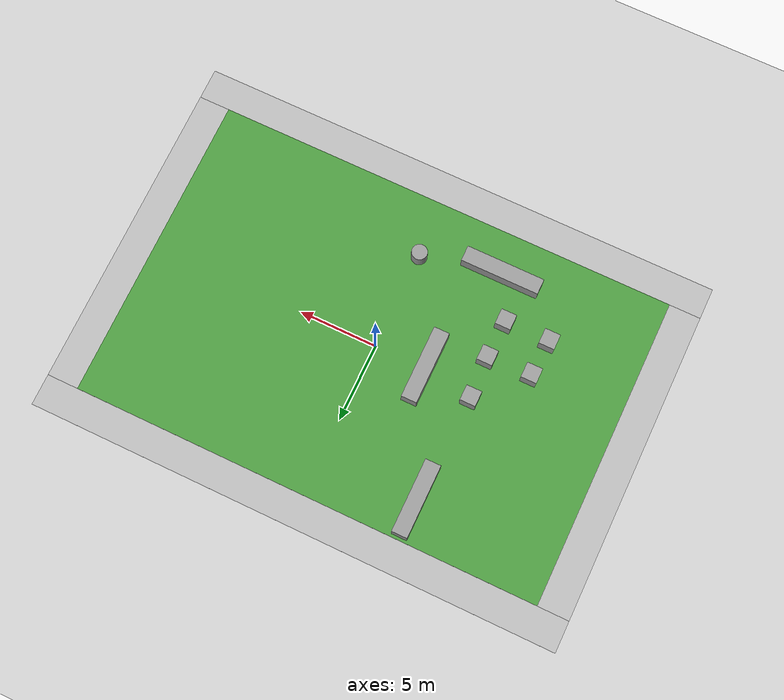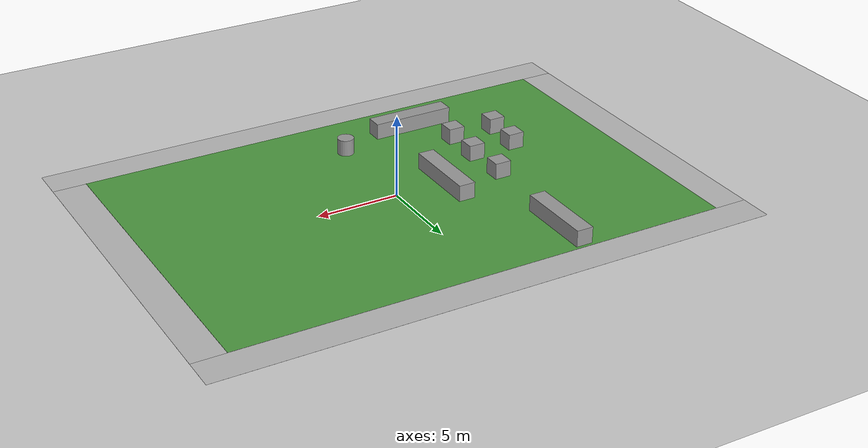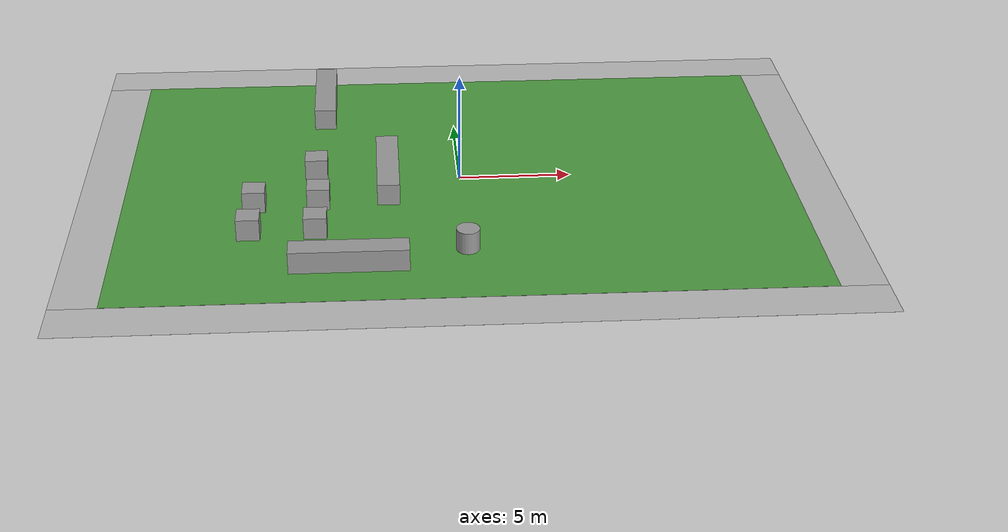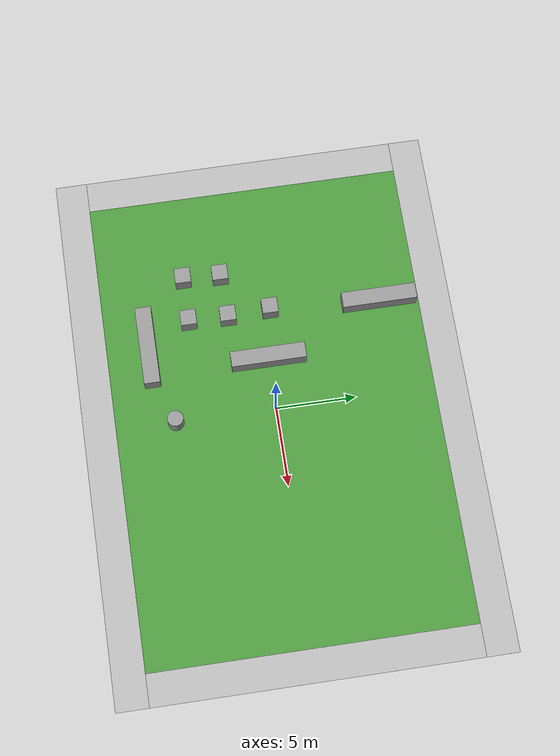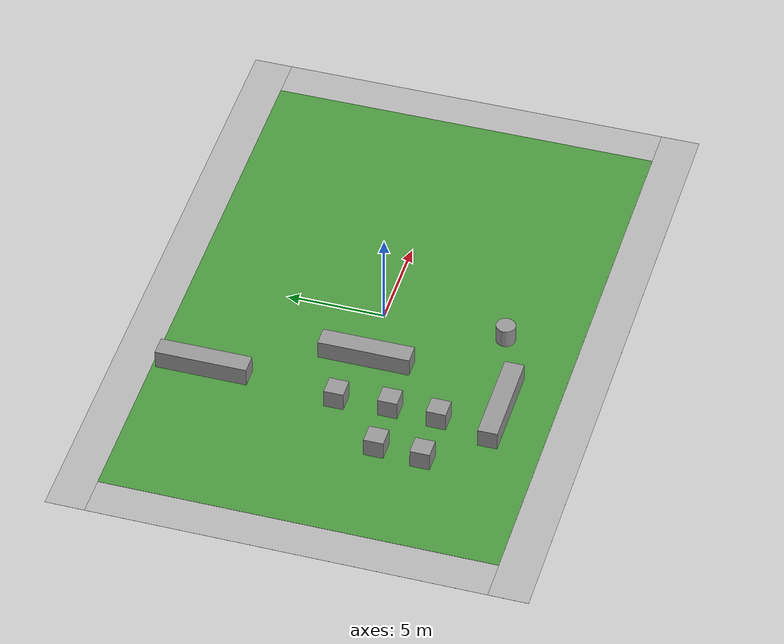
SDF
<sdf version="1.6">
 <world name="default">
  <model name="ground_plane">
   <static>1</static>
   <link name="link">
    <collision name="collision">
     <geometry><plane><normal>0 0 1</normal><size>100 100</size></plane></geometry>
     <surface>
      <contact><collide_bitmask>65535</collide_bitmask></contact>
      <friction><ode><mu>100</mu><mu2>50</mu2></ode></friction>
     </surface>
    </collision>
    <visual name="visual">
     <cast_shadows>0</cast_shadows>
     <geometry><plane><normal>0 0 1</normal><size>100 100</size></plane></geometry>
     <material>
      <script><uri>file://media/materials/scripts/gazebo.material</uri><name>Gazebo/Grey</name></script>
     </material>
    </visual>
   </link>
  </model>
  <model name="robocup_3d_field">
   <static>1</static>
   <link name="field">
    <pose>0 0 0.01 0 -0 0</pose>
    <collision name="collision">
     <geometry><plane><normal>0 0 1</normal><size>30 20</size></plane></geometry>
     <surface><friction><ode><mu>100</mu><mu2>50</mu2></ode></friction></surface>
    </collision>
    <visual name="base1">
     <pose>0 11 0.001 0 -0 0</pose>
     <cast_shadows>0</cast_shadows>
     <geometry><plane><normal>0 0 1</normal><size>34 2</size></plane></geometry>
     <material>
      <script>
       <uri>model://robocup_3Dsim_field/materials/scripts/</uri>
       <uri>model://robocup_3Dsim_field/materials/textures/</uri>
       <name>RoboCup/FieldBorder</name>
      </script>
     </material>
    </visual>
    <visual name="base2">
     <pose>0 -11 0.001 0 -0 0</pose>
     <cast_shadows>0</cast_shadows>
     <geometry><plane><normal>0 0 1</normal><size>34 2</size></plane></geometry>
     <material>
      <script>
       <uri>model://robocup_3Dsim_field/materials/scripts/</uri>
       <uri>model://robocup_3Dsim_field/materials/textures/</uri>
       <name>RoboCup/FieldBorder</name>
      </script>
     </material>
    </visual>
    <visual name="base3">
     <pose>16 0 0.001 0 -0 0</pose>
     <cast_shadows>0</cast_shadows>
     <geometry><plane><normal>0 0 1</normal><size>2 20</size></plane></geometry>
     <material>
      <script>
       <uri>model://robocup_3Dsim_field/materials/scripts/</uri>
       <uri>model://robocup_3Dsim_field/materials/textures/</uri>
       <name>RoboCup/FieldBorder</name>
      </script>
     </material>
    </visual>
    <visual name="base4">
     <pose>-16 0 0.001 0 -0 0</pose>
     <cast_shadows>0</cast_shadows>
     <geometry><plane><normal>0 0 1</normal><size>2 20</size></plane></geometry>
     <material>
      <script>
       <uri>model://robocup_3Dsim_field/materials/scripts/</uri>
       <uri>model://robocup_3Dsim_field/materials/textures/</uri>
       <name>RoboCup/FieldBorder</name>
      </script>
     </material>
    </visual>
    <visual name="carpet">
     <cast_shadows>0</cast_shadows>
     <geometry><plane><normal>0 0 1</normal><size>30 20</size></plane></geometry>
     <material>
      <script>
       <uri>model://robocup_3Dsim_field/materials/scripts/</uri>
       <uri>model://robocup_3Dsim_field/materials/textures/</uri>
       <name>RoboCup/Grass</name>
      </script>
     </material>
    </visual>
   </link>
  </model>
  <model name="unit_box_clone_7_clone">
   <static>1</static>
   <pose>-4.98381 -7.36602 0.507807 0 0.000871 1.7e-05</pose>
   <link name="link">
    <inertial>
     <mass>1</mass>
     <inertia>
      <ixx>0.166667</ixx>
      <ixy>0</ixy>
      <ixz>0</ixz>
      <iyy>0.166667</iyy>
      <iyz>0</iyz>
      <izz>0.166667</izz>
     </inertia>
    </inertial>
    <collision name="collision"><geometry><box><size>5.03596 1 1</size></box></geometry></collision>
    <visual name="visual">
     <geometry><box><size>5.03596 1 1</size></box></geometry>
     <material>
      <script><name>Gazebo/Grey</name><uri>file://media/materials/scripts/gazebo.material</uri></script>
     </material>
    </visual>
   </link>
  </model>
  <model name="unit_cylinder_1">
   <static>1</static>
   <pose>0.027885 -6.24796 0.509991 0 -0 0</pose>
   <link name="link">
    <inertial>
     <mass>1</mass>
     <inertia><ixx>0.145833</ixx><ixy>0</ixy><ixz>0</ixz><iyy>0.145833</iyy><iyz>0</iyz><izz>0.125</izz></inertia>
    </inertial>
    <collision name="collision">
     <geometry><cylinder><radius>0.5</radius><length>1</length></cylinder></geometry>
    </collision>
    <visual name="visual">
     <geometry><cylinder><radius>0.5</radius><length>1</length></cylinder></geometry>
     <material>
      <script><name>Gazebo/Grey</name><uri>file://media/materials/scripts/gazebo.material</uri></script>
     </material>
    </visual>
   </link>
  </model>
  <model name="unit_box_0">
   <static>1</static>
   <pose>-3.25338 -0.010603 0.509999 -0 -2e-06 -5.4e-05</pose>
   <link name="link">
    <inertial>
     <mass>1</mass>
     <inertia>
      <ixx>0.166667</ixx>
      <ixy>0</ixy>
      <ixz>0</ixz>
      <iyy>0.166667</iyy>
      <iyz>0</iyz>
      <izz>0.166667</izz>
     </inertia>
    </inertial>
    <collision name="collision"><geometry><box><size>1 4.69391 1</size></box></geometry></collision>
    <visual name="visual">
     <geometry><box><size>1 4.69391 1</size></box></geometry>
     <material>
      <script><name>Gazebo/Grey</name><uri>file://media/materials/scripts/gazebo.material</uri></script>
     </material>
    </visual>
   </link>
  </model>
  <model name="unit_box_0_clone">
   <static>1</static>
   <pose>-6.14157 7.46896 0.508413 0.000676 0 5e-06</pose>
   <link name="link">
    <inertial>
     <mass>1</mass>
     <inertia>
      <ixx>0.166667</ixx>
      <ixy>0</ixy>
      <ixz>0</ixz>
      <iyy>0.166667</iyy>
      <iyz>0</iyz>
      <izz>0.166667</izz>
     </inertia>
    </inertial>
    <collision name="collision"><geometry><box><size>1 4.69391 1</size></box></geometry></collision>
    <visual name="visual">
     <geometry><box><size>1 4.69391 1</size></box></geometry>
     <material>
      <script><name>Gazebo/Grey</name><uri>file://media/materials/scripts/gazebo.material</uri></script>
     </material>
    </visual>
   </link>
  </model>
  <model name="unit_box_1">
   <static>1</static>
   <pose>-6.47458 0.554858 0.51 0 -0 0</pose>
   <link name="link">
    <inertial>
     <mass>1</mass>
     <inertia>
      <ixx>0.166667</ixx>
      <ixy>0</ixy>
      <ixz>0</ixz>
      <iyy>0.166667</iyy>
      <iyz>0</iyz>
      <izz>0.166667</izz>
     </inertia>
    </inertial>
    <collision name="collision"><geometry><box><size>1 1 1</size></box></geometry></collision>
    <visual name="visual">
     <geometry><box><size>1 1 1</size></box></geometry>
     <material>
      <script><name>Gazebo/Grey</name><uri>file://media/materials/scripts/gazebo.material</uri></script>
     </material>
    </visual>
   </link>
  </model>
  <model name="unit_box_1_clone">
   <static>1</static>
   <pose>-6.34907 -2.13179 0.51 0 -0 0</pose>
   <link name="link">
    <inertial>
     <mass>1</mass>
     <inertia>
      <ixx>0.166667</ixx>
      <ixy>0</ixy>
      <ixz>0</ixz>
      <iyy>0.166667</iyy>
      <iyz>0</iyz>
      <izz>0.166667</izz>
     </inertia>
    </inertial>
    <collision name="collision"><geometry><box><size>1 1 1</size></box></geometry></collision>
    <visual name="visual">
     <geometry><box><size>1 1 1</size></box></geometry>
     <material>
      <script><name>Gazebo/Grey</name><uri>file://media/materials/scripts/gazebo.material</uri></script>
     </material>
    </visual>
   </link>
  </model>
  <model name="unit_box_1_clone_0">
   <static>1</static>
   <pose>-6.43188 -4.61696 0.51 0 -0 0</pose>
   <link name="link">
    <inertial>
     <mass>1</mass>
     <inertia>
      <ixx>0.166667</ixx>
      <ixy>0</ixy>
      <ixz>0</ixz>
      <iyy>0.166667</iyy>
      <iyz>0</iyz>
      <izz>0.166667</izz>
     </inertia>
    </inertial>
    <collision name="collision"><geometry><box><size>1 1 1</size></box></geometry></collision>
    <visual name="visual">
     <geometry><box><size>1 1 1</size></box></geometry>
     <material>
      <script><name>Gazebo/Grey</name><uri>file://media/materials/scripts/gazebo.material</uri></script>
     </material>
    </visual>
   </link>
  </model>
  <model name="unit_box_1_clone_2">
   <static>1</static>
   <pose>-9.16562 -2.25598 0.51 0 -0 0</pose>
   <link name="link">
    <inertial>
     <mass>1</mass>
     <inertia>
      <ixx>0.166667</ixx>
      <ixy>0</ixy>
      <ixz>0</ixz>
      <iyy>0.166667</iyy>
      <iyz>0</iyz>
      <izz>0.166667</izz>
     </inertia>
    </inertial>
    <collision name="collision"><geometry><box><size>1 1 1</size></box></geometry></collision>
    <visual name="visual">
     <geometry><box><size>1 1 1</size></box></geometry>
     <material>
      <script><name>Gazebo/Grey</name><uri>file://media/materials/scripts/gazebo.material</uri></script>
     </material>
    </visual>
   </link>
  </model>
  <model name="unit_box_1_clone_3">
   <static>1</static>
   <pose>-9.28987 -4.61696 0.51 0 -0 0</pose>
   <link name="link">
    <inertial>
     <mass>1</mass>
     <inertia>
      <ixx>0.166667</ixx>
      <ixy>0</ixy>
      <ixz>0</ixz>
      <iyy>0.166667</iyy>
      <iyz>0</iyz>
      <izz>0.166667</izz>
     </inertia>
    </inertial>
    <collision name="collision"><geometry><box><size>1 1 1</size></box></geometry></collision>
    <visual name="visual">
     <geometry><box><size>1 1 1</size></box></geometry>
     <material>
      <script><name>Gazebo/Grey</name><uri>file://media/materials/scripts/gazebo.material</uri></script>
     </material>
    </visual>
   </link>
  </model>
 </world>
</sdf>
